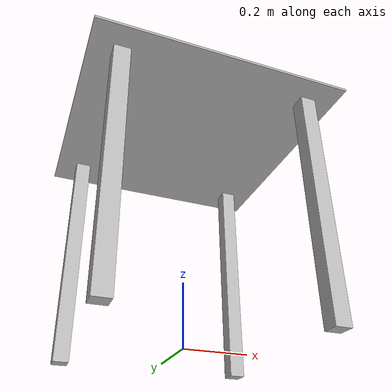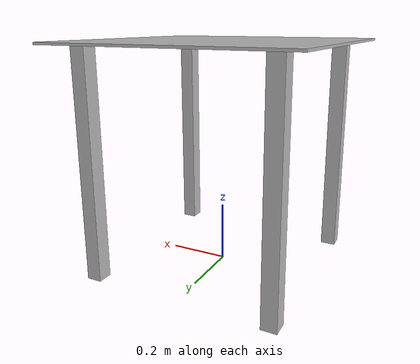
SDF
<?xml version="1.0"?>
<sdf version="1.6">
  <model name="rwc2019/kitchen_table">
    <link name="1_link">
      <collision name="1_col">
        <geometry>
          <box>
            <size>0.8 0.8 0.008</size>
          </box>
        </geometry>
      </collision>
      <visual name="1_vis">
        <geometry>
          <box>
            <size>0.8 0.8 0.008</size>
          </box>
        </geometry>
      </visual>
      <pose>0.0 0.0 0.756 0 0 0</pose>
    </link>
    <link name="2_link">
      <collision name="2_col">
        <geometry>
          <box>
            <size>0.05 0.05 0.752</size>
          </box>
        </geometry>
      </collision>
      <visual name="2_vis">
        <geometry>
          <box>
            <size>0.05 0.05 0.752</size>
          </box>
        </geometry>
      </visual>
      <pose>-0.305 -0.305 0.376 0 0 0</pose>
    </link>
    <link name="3_link">
      <collision name="3_col">
        <geometry>
          <box>
            <size>0.05 0.05 0.752</size>
          </box>
        </geometry>
      </collision>
      <visual name="3_vis">
        <geometry>
          <box>
            <size>0.05 0.05 0.752</size>
          </box>
        </geometry>
      </visual>
      <pose>0.305 -0.305 0.376 0 0 0</pose>
    </link>
    <link name="4_link">
      <collision name="4_col">
        <geometry>
          <box>
            <size>0.05 0.05 0.752</size>
          </box>
        </geometry>
      </collision>
      <visual name="4_vis">
        <geometry>
          <box>
            <size>0.05 0.05 0.752</size>
          </box>
        </geometry>
      </visual>
      <pose>-0.305 0.305 0.376 0 0 0</pose>
    </link>
    <link name="5_link">
      <collision name="5_col">
        <geometry>
          <box>
            <size>0.05 0.05 0.752</size>
          </box>
        </geometry>
      </collision>
      <visual name="5_vis">
        <geometry>
          <box>
            <size>0.05 0.05 0.752</size>
          </box>
        </geometry>
      </visual>
      <pose>0.305 0.305 0.376 0 0 0</pose>
    </link>
    <link name="on_top_of">
      <virtual_volume name="on_top_of_vv">
        <geometry>
          <box>
            <size>0.78 0.74 0.25</size>
          </box>
        </geometry>
        <pose>0.0 0.0 0.905 0 0 0</pose>
      </virtual_volume>
    </link>
    <link name="in_front_of">
      <virtual_volume name="in_front_of_vv">
        <geometry>
          <box>
            <size>0.2 0.4 0.01</size>
          </box>
        </geometry>
        <pose>0.9 0.0 0.005 0 0 0</pose>
      </virtual_volume>
    </link>
    <link name="behind">
      <virtual_volume name="behind_vv">
        <geometry>
          <box>
            <size>0.2 0.4 0.01</size>
          </box>
        </geometry>
        <pose>-0.9 0.0 0.005 0 0 0</pose>
      </virtual_volume>
    </link>
    <link name="left_of">
      <virtual_volume name="left_of_vv">
        <geometry>
          <box>
            <size>0.2 0.4 0.01</size>
          </box>
        </geometry>
        <pose>0 -0.9 0.005 0 0 1.57</pose>
      </virtual_volume>
    </link>
    <link name="right_of">
      <virtual_volume name="right_of_vv">
        <geometry>
          <box>
            <size>0.2 0.4 0.01</size>
          </box>
        </geometry>
        <pose>0 0.9 0.005 0 0 1.57</pose>
      </virtual_volume>
    </link>
    <link name="in_front_of_close">
      <virtual_volume name="in_front_of_close_vv">
        <geometry>
          <box>
            <size>0.2 0.2 0.01</size>
          </box>
        </geometry>
        <pose>0.7 0.0 0.005 0 0 0</pose>
      </virtual_volume>
    </link>
    <link name="behind_close">
      <virtual_volume name="behind_close_vv">
        <geometry>
          <box>
            <size>0.2 0.2 0.01</size>
          </box>
        </geometry>
        <pose>-0.7 0.0 0.005 0 0 0</pose>
      </virtual_volume>
    </link>
    <link name="left_of_close">
      <virtual_volume name="left_of_close_vv">
        <geometry>
          <box>
            <size>0.2 0.2 0.01</size>
          </box>
        </geometry>
        <pose>0 -0.7 0.005 0 0 1.57</pose>
      </virtual_volume>
    </link>
    <link name="right_of_close">
      <virtual_volume name="right_of_close_vv">
        <geometry>
          <box>
            <size>0.2 0.2 0.01</size>
          </box>
        </geometry>
        <pose>0 0.7 0.005 0 0 1.57</pose>
      </virtual_volume>
    </link>
    <static>true</static>
  </model>
</sdf>
